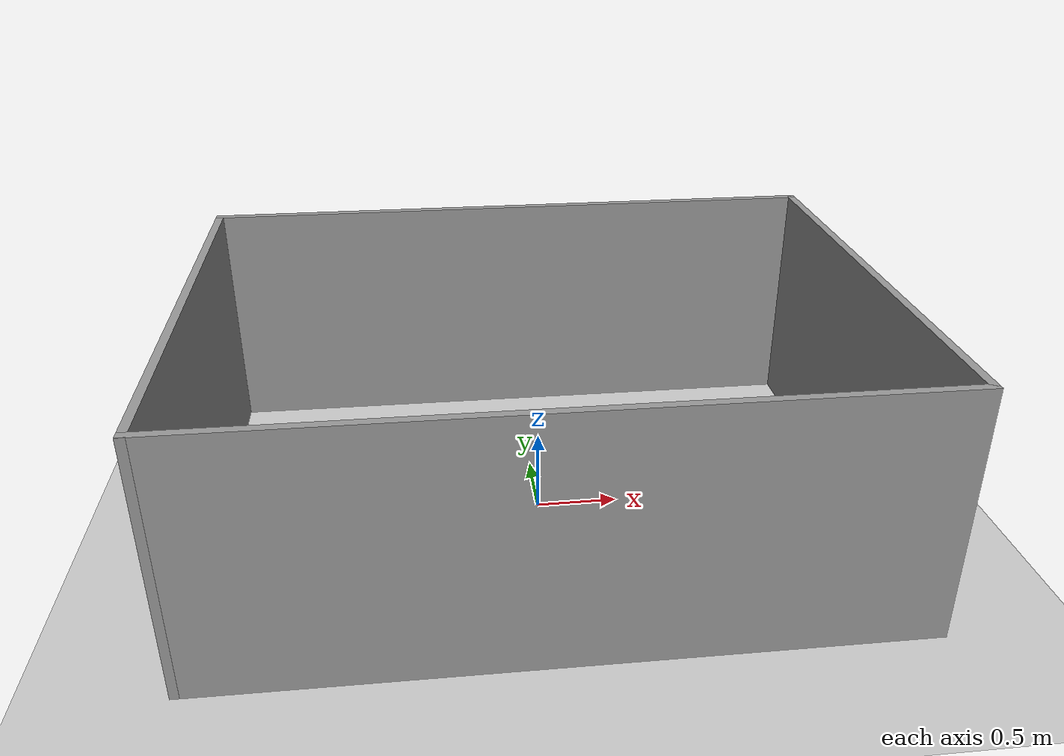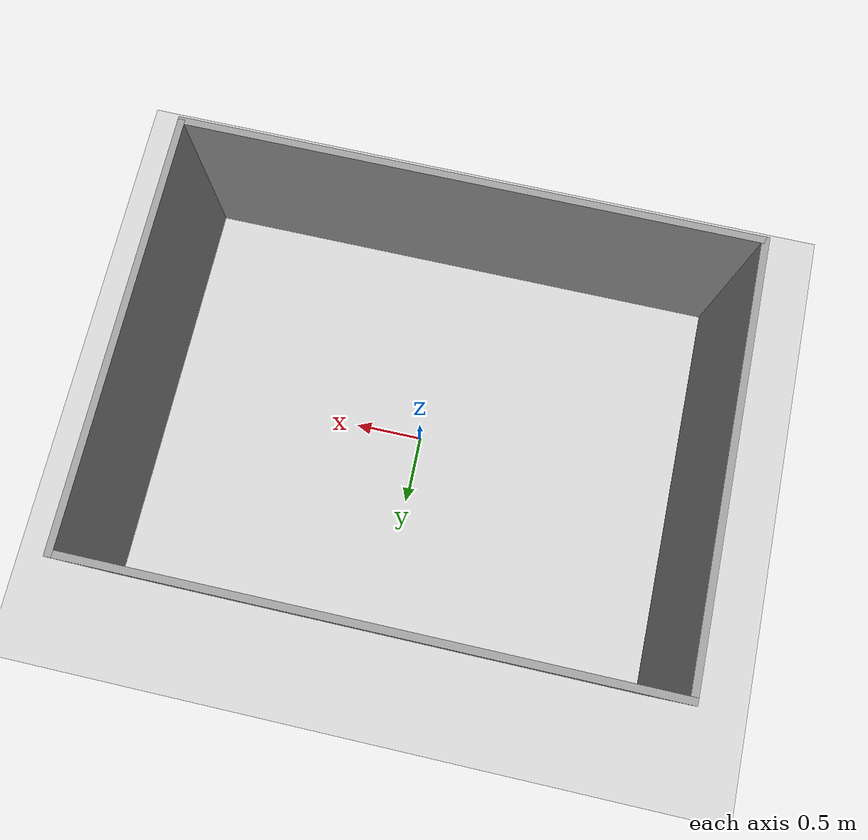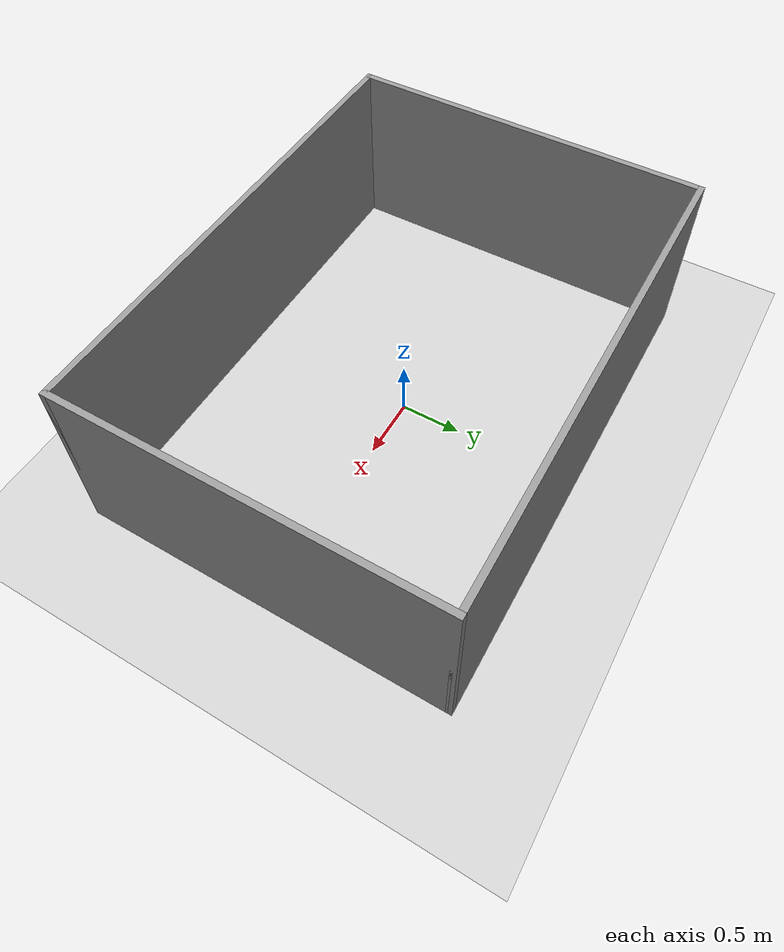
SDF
<?xml version="1.0" ?>
<sdf version="1.5">
  <world name="default">
    <!-- A global light source -->
    <include>
      <uri>model://sun</uri>
    </include>
    <!-- A ground plane -->
    <include>
      <uri>model://ground_plane</uri>
    </include>
    <!-- Trossen Robotics Offices -->
    <include>
      <uri>model://small_arena</uri>
      <pose>0 0 0 0 0 1.5707</pose>
    </include>
  </world>
</sdf>

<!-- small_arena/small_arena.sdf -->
<sdf version='1.7'>
  <model name='small_arena'>
    <pose>0 0 0 0 -0 0</pose>
    <link name='Wall_0'>
      <collision name='Wall_0_Collision'>
        <geometry>
          <box>
            <size>4.05 0.05 1.5</size>
          </box>
        </geometry>
        <pose>0 0 0.75 0 -0 0</pose>
      </collision>
      <visual name='Wall_0_Visual'>
        <pose>0 0 0.75 0 -0 0</pose>
        <geometry>
          <box>
            <size>4.05 0.05 1.5</size>
          </box>
        </geometry>
        <material>
          <script>
            <uri>file://media/materials/scripts/gazebo.material</uri>
            <name>Gazebo/Grey</name>
          </script>
          <ambient>1 1 1 1</ambient>
        </material>
        <meta>
          <layer>0</layer>
        </meta>
      </visual>
      <pose>-1.5 0 0 0 -0 -1.5708</pose>
    </link>
    <link name='Wall_4'>
      <collision name='Wall_4_Collision'>
        <geometry>
          <box>
            <size>4.05 0.05 1.5</size>
          </box>
        </geometry>
        <pose>0 0 0.75 0 -0 0</pose>
      </collision>
      <visual name='Wall_4_Visual'>
        <pose>0 0 0.75 0 -0 0</pose>
        <geometry>
          <box>
            <size>4.05 0.05 1.5</size>
          </box>
        </geometry>
        <material>
          <script>
            <uri>file://media/materials/scripts/gazebo.material</uri>
            <name>Gazebo/Grey</name>
          </script>
          <ambient>1 1 1 1</ambient>
        </material>
        <meta>
          <layer>0</layer>
        </meta>
      </visual>
      <pose>1.5 0 0 0 -0 -1.5708</pose>
    </link>
    <link name='Wall_6'>
      <collision name='Wall_6_Collision'>
        <geometry>
          <box>
            <size>3.05 0.05 1.5</size>
          </box>
        </geometry>
        <pose>0 0 0.75 0 -0 0</pose>
      </collision>
      <visual name='Wall_6_Visual'>
        <pose>0 0 0.75 0 -0 0</pose>
        <geometry>
          <box>
            <size>3.05 0.05 1.5</size>
          </box>
        </geometry>
        <material>
          <script>
            <uri>file://media/materials/scripts/gazebo.material</uri>
            <name>Gazebo/Grey</name>
          </script>
          <ambient>1 1 1 1</ambient>
        </material>
        <meta>
          <layer>0</layer>
        </meta>
      </visual>
      <pose>0 -2 0 0 -0 0</pose>
    </link>
    <link name='Wall_8'>
      <collision name='Wall_8_Collision'>
        <geometry>
          <box>
            <size>3.05 0.05 1.5</size>
          </box>
        </geometry>
        <pose>0 0 0.75 0 -0 0</pose>
      </collision>
      <visual name='Wall_8_Visual'>
        <pose>0 0 0.75 0 -0 0</pose>
        <geometry>
          <box>
            <size>3.05 0.05 1.5</size>
          </box>
        </geometry>
        <material>
          <script>
            <uri>file://media/materials/scripts/gazebo.material</uri>
            <name>Gazebo/Grey</name>
          </script>
          <ambient>1 1 1 1</ambient>
        </material>
        <meta>
          <layer>0</layer>
        </meta>
      </visual>
      <pose>0 2 0 0 -0 0</pose>
    </link>
    <static>1</static>
  </model>
</sdf>
